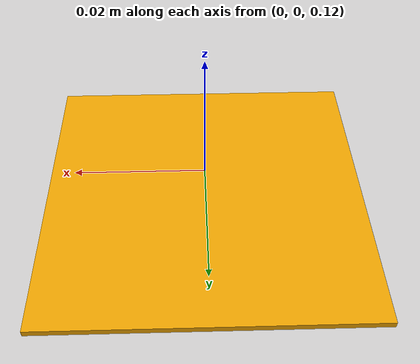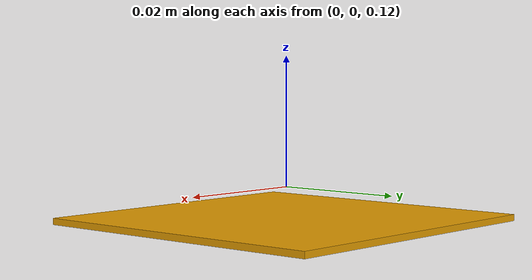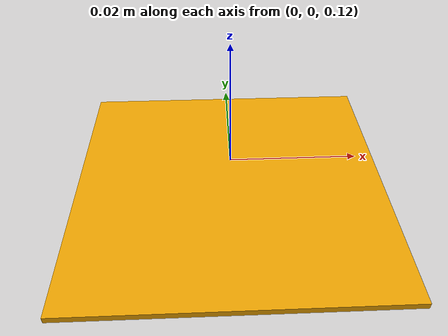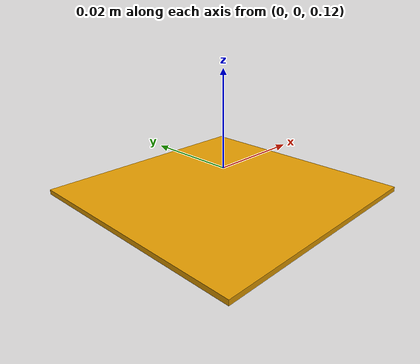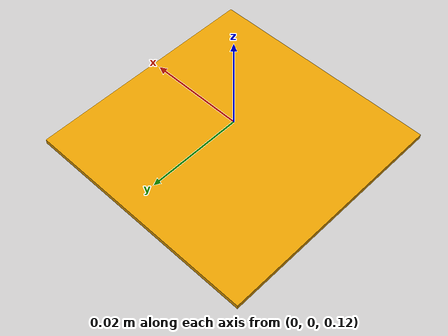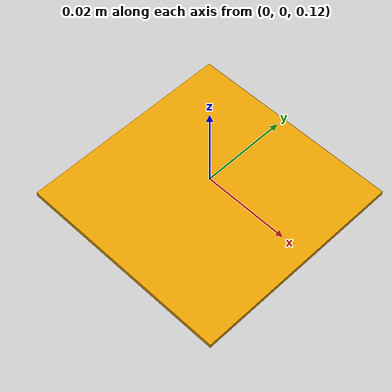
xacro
<?xml version="1.0" ?>
<robot name="mark_label_1" xmlns:xacro="http://www.ros.org/wiki/xacro">
  <link name="mark_label_1__link">
    <inertial>
      <mass value="0.390"/>
      <origin rpy="0 0 0" xyz="0 0 0"/>
      <inertia ixx="0.00058" ixy="0" ixz="0" iyy="0.00058" iyz="0" izz="0.00019"/>
    </inertial>
    <collision name="mark_label_1__collision">
      <origin rpy="0 0 0" xyz="0    0    0.115"/>
      <geometry>
        <box size=".05 .05 .0001"/>
      </geometry>
    </collision>
    <visual name="mark_label_1__visual">
      <origin rpy="0 0 0" xyz="0    0    0.115"/>
      <geometry>
        <box size=".05 .05 .001"/>
      </geometry>
    </visual>
  </link>
</robot>
